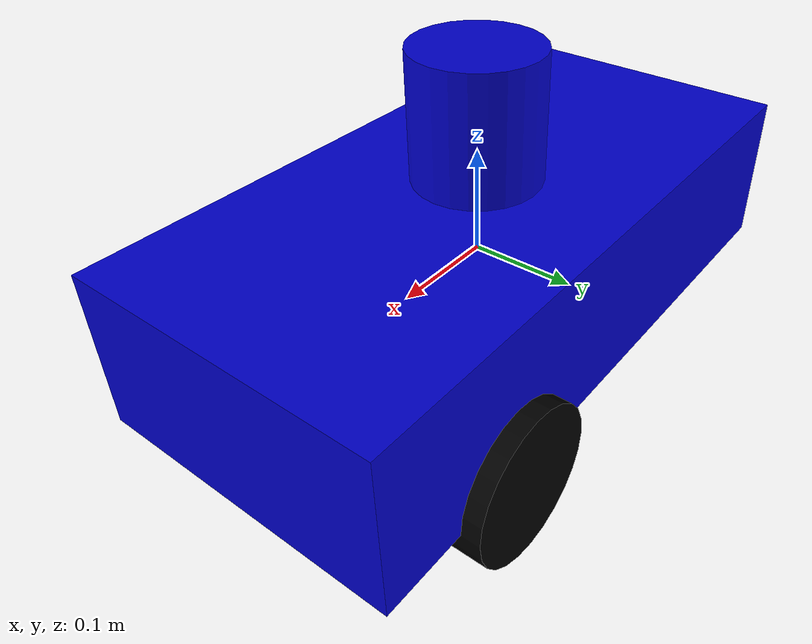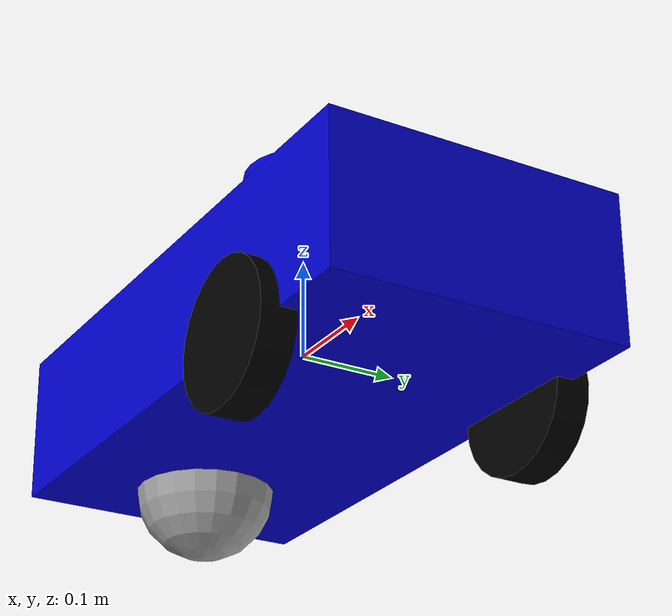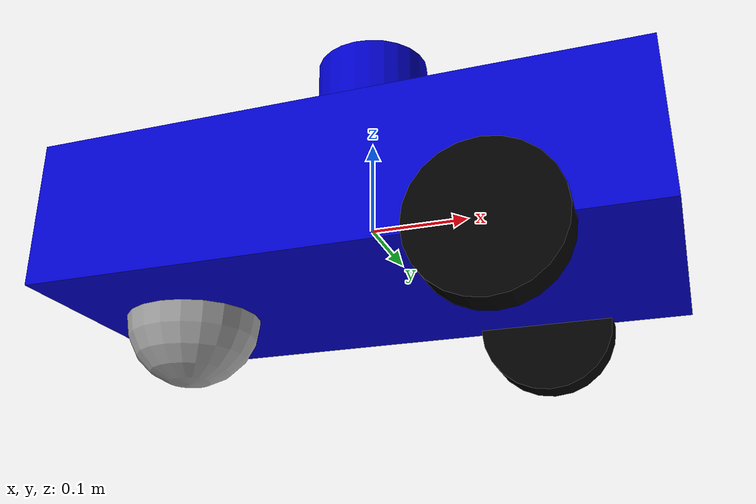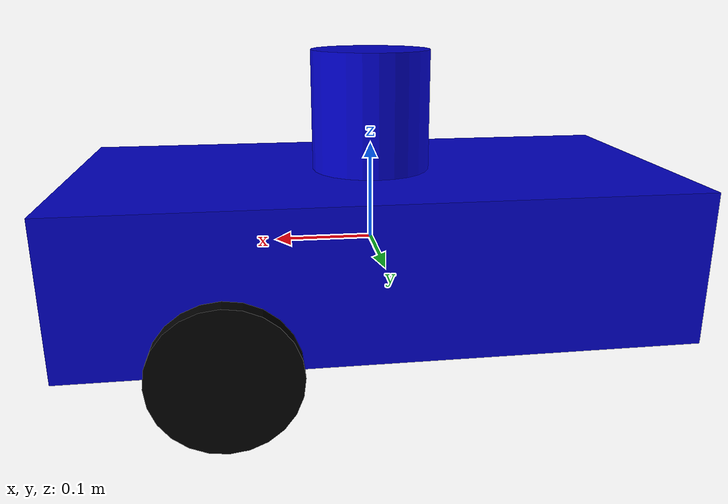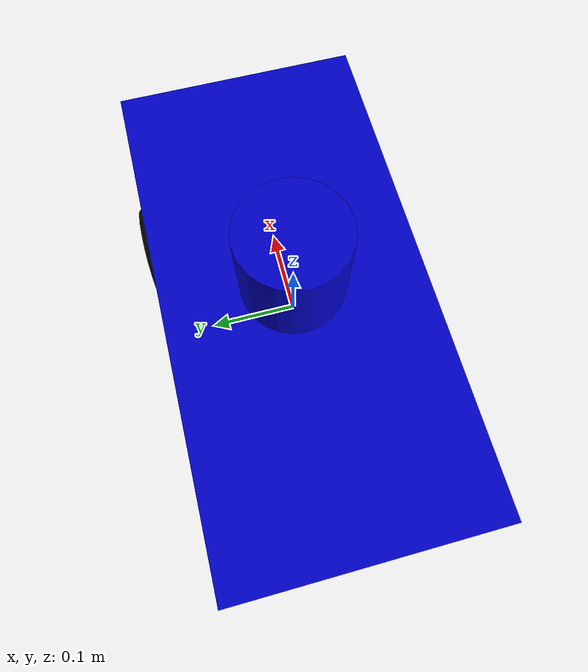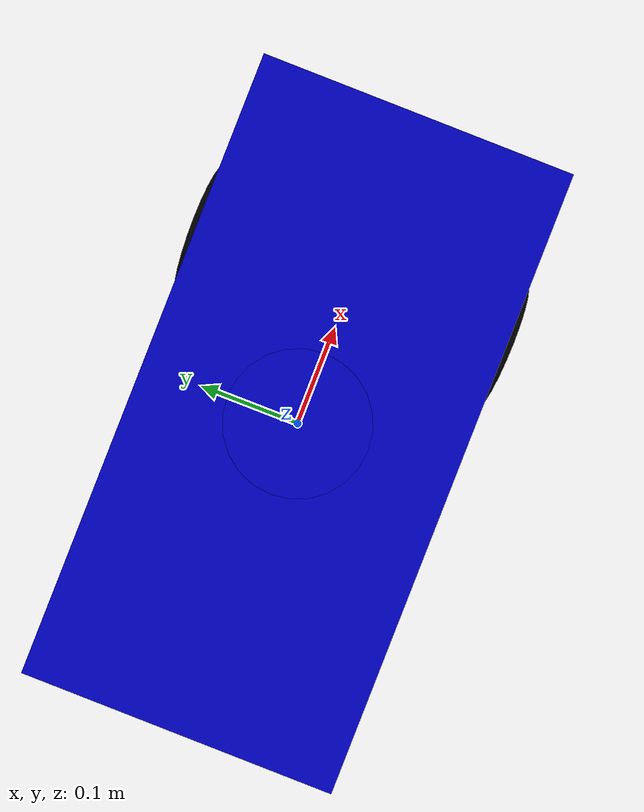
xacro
<?xml version="1.0"?>
<robot name="roscontrol" xmlns:xacro="http://ros.org/wiki/xacro">

  <xacro:property name="robot_side" value="0.3" />
  <xacro:property name="lidar_radius" value="0.06" />
  <xacro:property name="lidar_height" value="0.12" />
  <xacro:property name="wheeldiam" value="0.14" />
  <xacro:property name="pi" value="3.1415" />

  <material name="blue">
    <color rgba="0 0 0.8 1"/>
  </material>

  <material name="black">
    <color rgba="0 0 0 1"/>
  </material>

  <material name="white">
    <color rgba="1 1 1 1"/>
  </material>

  <xacro:macro name="default_inertial" params="mass">
    <inertial>
      <mass value="${mass}" />
      <inertia ixx="1.0" ixy="0.0" ixz="0.0" iyy="1.0" iyz="0.0" izz="1.0" />
    </inertial>
  </xacro:macro>

  <link name="base_link">
    <visual>
      <geometry>
        <box size="${robot_side*2} ${robot_side} ${robot_side/2}"/>
      </geometry>
      <material name="blue"/>
    </visual>
    <collision>
      <geometry>
        <box size="${robot_side*2} ${robot_side} ${robot_side/2}"/>
      </geometry>
    </collision>
    <xacro:default_inertial mass="30"/>
  </link>

	<link name="back_wheel">
		<visual>
			<geometry>
				<sphere radius="${wheeldiam/2}"/>
			</geometry>
		</visual>
		<collision>
			<geometry>
				<sphere radius="${wheeldiam/2}"/>
			</geometry>
		</collision>
		<xacro:default_inertial mass="1"/>
	</link>
	<joint name="base_to_back_wheel" type="continuous">
  	<axis xyz="0 1 0" rpy="0 0 0" />
    <parent link="base_link"/>
    <child link="back_wheel"/>
    <origin xyz="-${2*robot_side/3} 0 -${robot_side/4}" rpy="0 0 0"/>
  </joint>
  <gazebo reference="back_wheel">
    <mu1 value="200.0"/>
    <mu2 value="100.0"/>
    <kp value="10000000.0" />
    <kd value="1.0" />
    <material>Gazebo/Grey</material>
  </gazebo>

  <xacro:macro name="wheel" params="rl rl_reflect">

    <link name="${rl}_wheel">
      <visual>
        <origin xyz="0 0 0" rpy="${pi/2} 0 0" />
        <geometry>
          <cylinder radius="${wheeldiam/2}" length="${wheeldiam/4}"/>
        </geometry>
        <material name="black"/>
      </visual>
      <collision>
        <origin xyz="0 0 0" rpy="${pi/2} 0 0" />
        <geometry>
          <cylinder radius="${wheeldiam/2}" length="${wheeldiam/4}"/>
        </geometry>
      </collision>
      <xacro:default_inertial mass="1"/>
    </link>
    <joint name="${rl}_wheel_joint" type="continuous">
      <axis xyz="0 1 0" rpy="0 0 0" />
      <parent link="base_link"/>
      <child link="${rl}_wheel"/>
      <origin xyz="${robot_side/2} ${rl_reflect*robot_side/2} -${robot_side/4}" rpy="0 0 0"/>
    </joint>

    <gazebo reference="${rl}_wheel">
      <mu1 value="200.0"/>
      <mu2 value="100.0"/>
      <kp value="10000000.0" />
      <kd value="1.0" />
      <material>Gazebo/Grey</material>
    </gazebo>

    <transmission name="${rl}_wheel_trans">
      <type>transmission_interface/SimpleTransmission</type>
      <actuator name="${rl}_wheel_motor">
        <mechanicalReduction>1</mechanicalReduction>
      </actuator>
      <joint name="${rl}_wheel_joint">
        <hardwareInterface>VelocityJointInterface</hardwareInterface>
      </joint>
    </transmission>
  </xacro:macro>
	<xacro:wheel rl="right"  rl_reflect="1"/>
	<xacro:wheel rl="left" rl_reflect="-1"/>

  <link name="lidar">
    <visual>
      <geometry>
        <cylinder radius="${lidar_radius}" length="${lidar_height}" />
      </geometry>
      <material name="blue"/>
      <origin xyz="0 0 0"/>
    </visual>
    <collision>
      <geometry>
        <cylinder radius="${lidar_radius}" length="${lidar_height}" />
      </geometry>
    </collision>
    <xacro:default_inertial mass="1"/>
  </link>

	<gazebo reference="lidar">
		<sensor name="laser" type="ray">
			<pose>0 0 0 0 0 0</pose>
			<visualize>true</visualize>
			<update_rate>10</update_rate>
			<ray>
				<scan>
					<horizontal>
						<samples>360</samples>
						<resolution>1</resolution>
						<min_angle>-3.14</min_angle>
						<max_angle>3.14</max_angle>
					</horizontal>
				</scan>
				<range>
					<min>0.3</min>
					<max>12</max>
					<resolution>0.01</resolution>
				</range>
			</ray>
			<plugin name="laser_controller" filename="libgazebo_ros_laser.so">
				<topicName>/scan</topicName>
				<frameName>lidar</frameName>
			</plugin>
		</sensor>
	</gazebo>

	<joint name="base_to_lidar" type="fixed">
    <parent link="base_link"/>
    <child link="lidar"/>
    <origin xyz="0 0 ${(robot_side/2+lidar_height)/2}"/>
  </joint>

  <gazebo>
    <plugin name="gazebo_ros_control" filename="libgazebo_ros_control.so">
      <robotNamespace>/</robotNamespace>
    </plugin>
  </gazebo>

</robot>
